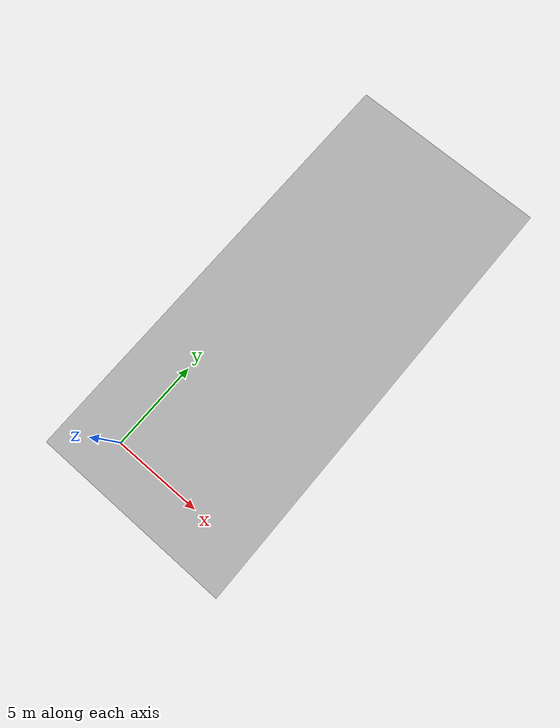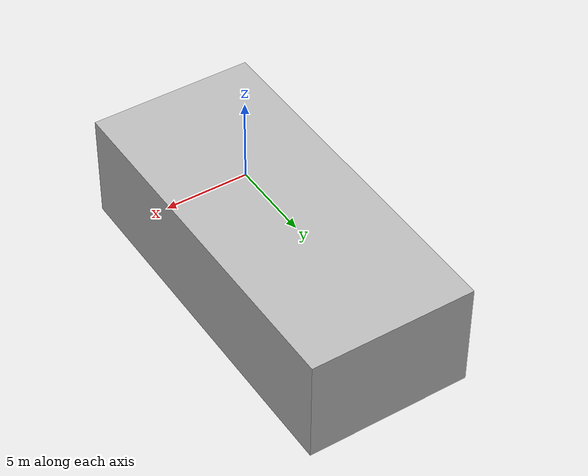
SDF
<?xml version="1.0" ?>
<sdf version="1.6">
  <model name="brick">
    <static>true</static>
    <link name="link">
      <collision name="collision">
        <pose> -0.6 -0.9 1.0 1.5707963 0 1.5707963 </pose>
        <geometry>
          <mesh>
            <scale>0.1 0.1 0.1 </scale>
            <uri>model://table/meshes/Brick.dae</uri>
          </mesh>
        </geometry>
      </collision>

      <visual name="visual">
        <pose> -0.6 -0.9 1.0 1.5707963 0 1.5707963 </pose>
        <geometry>
          <mesh>
            <scale>0.1 0.1 0.1 </scale>
            <uri>model://table/meshes/Brick.dae</uri>
          </mesh>
        </geometry>
      </visual>
    </link>
  </model>
</sdf>
